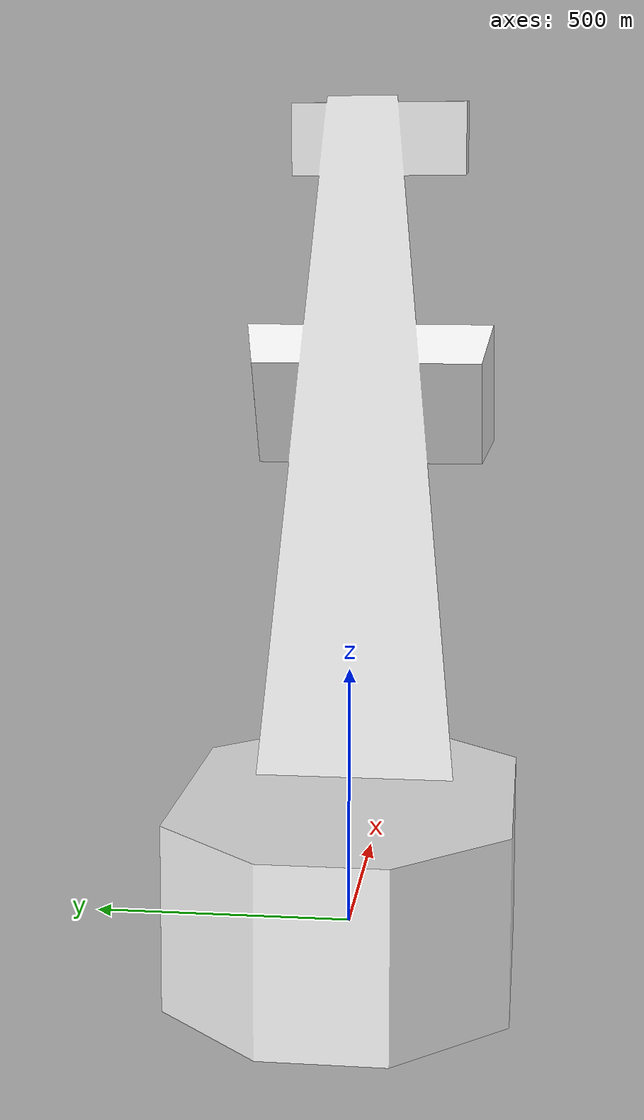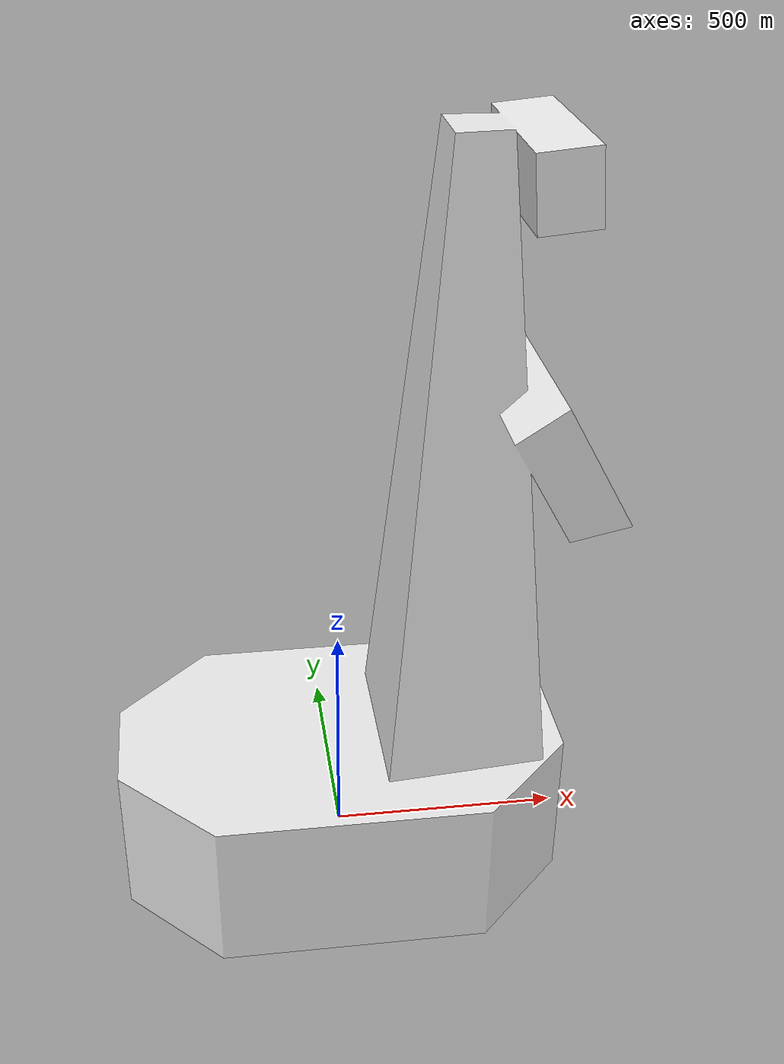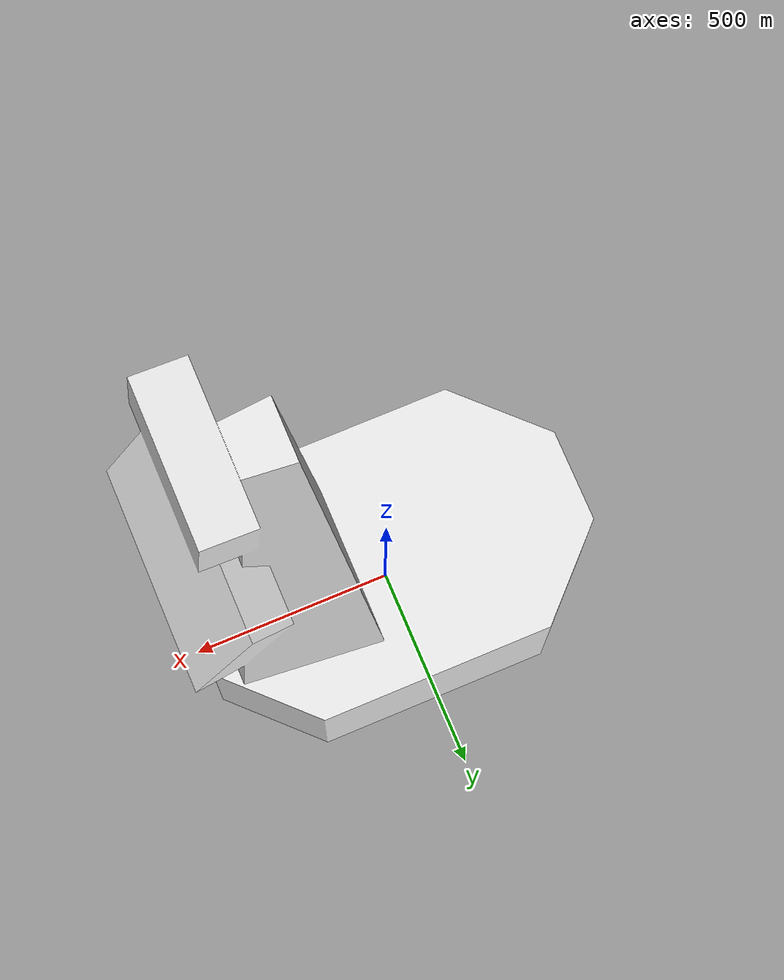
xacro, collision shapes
<?xml version="1.0" ?>
<robot name="rosa" xmlns:xacro="http://www.ros.org/wiki/xacro">

  <xacro:include filename="materials.xacro" />
  <xacro:include filename="rosa_gazebo.xacro" />
  <xacro:include filename="omni_wheel.xacro" />
  <xacro:include filename="rosa_body.xacro" />

<xacro:property name="wheel_x" value="0.35" />
<xacro:property name="wheel_y" value="0.295" />
<xacro:property name="wheel_z" value="0.075" />

  <!-- Base Macro-->
  <xacro:rosa_base name="base_link">
  </xacro:rosa_base>

  <!-- Wheel Macro -->
  <xacro:mechanum_wheel name="wheel_front_left" parent="base_link">
  	<origin xyz="${wheel_x} ${wheel_y} ${wheel_z}" rpy="0 0 0" />
  </xacro:mechanum_wheel>

  <xacro:mechanum_wheel name="wheel_front_right" parent="base_link" reflect="true">
  	<origin xyz="${wheel_x} -${wheel_y} ${wheel_z}" rpy="0 0 0" />
  </xacro:mechanum_wheel>

  <xacro:mechanum_wheel name="wheel_back_left" parent="base_link" reflect="true">
  	<origin xyz="-${wheel_x} ${wheel_y} ${wheel_z}" rpy="0 0 3.14159" />
  </xacro:mechanum_wheel>

  <xacro:mechanum_wheel name="wheel_back_right" parent="base_link">
  	<origin xyz="-${wheel_x} -${wheel_y} ${wheel_z}" rpy="0 0 3.14159" />
  </xacro:mechanum_wheel>

<!-- Robot Footprint -->
  <link name="base_footprint"/>

  <joint name="base_joint" type="fixed">
    <parent link="base_link"/>
    <child link="base_footprint"/>
    <origin xyz="0.0 0.0 -${wheel_z}" rpy="0 0 0"/>
  </joint>

</robot>

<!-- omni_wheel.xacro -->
<robot xmlns:xacro="http://www.ros.org/wiki/xacro" name="rosa">

  <xacro:macro name="mechanum_wheel" params="name parent reflect:='false' *origin">

   <link name="${name}_link" type="wheel">
    <inertial>
      <mass value="1.0" />
      <origin xyz="0 0 0" rpy="0 0 0" />
        <inertia  ixx="0.04" ixy="0.0007" ixz="0.0"
                  iyy="0.02" iyz="0.004"
                  izz="0.05" />
    </inertial>

    <visual>
     <geometry>
     <xacro:if value="${reflect}">
        <mesh filename="file://$(find rosa_description)/models/rosa/meshes/MECANUM_WHEEL_mhg.dae" scale="1 -1 1"/>
     </xacro:if>
     <xacro:unless value="${reflect}">
        <mesh filename="file://$(find rosa_description)/models/rosa/meshes/MECANUM_WHEEL_mhg.dae" scale="1 1 1"/>
     </xacro:unless>
     </geometry>
    </visual>
    <collision>
     <origin xyz="0 0 0" rpy="1.5707 0 0"/>
     <geometry>
	<cylinder length="0.06" radius="0.075"/>
     </geometry>
    </collision>
   </link>

   <joint name="${name}_joint" type="fixed">
    <xacro:insert_block name="origin" />
    <axis xyz="0 1 0" />
    <joint_properties damping="1" friction="1" />
    <parent link="${parent}" />
    <child link="${name}_link" />
   </joint>

  <gazebo reference="${name}_link">
    <mu1 value="1"/>
    <mu2 value="1"/>
  </gazebo>

  </xacro:macro>

</robot>

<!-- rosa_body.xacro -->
<robot xmlns:xacro="http://www.ros.org/wiki/xacro" name="rosa">

<xacro:macro name="rosa_base" params="name">
  <link name="${name}">
    <inertial>
      <mass value="80"/>
      <origin xyz="0 0 0.3" />
       <inertia ixx="5.652232699207" ixy="0.009719934438" ixz="1.293988226423"
               iyy="5.669473158652" iyz="0.007379583694"
               izz="5.683196351726" />
    </inertial>
    <visual>
      <origin xyz="0. 0. 0.15" rpy="0 3.14159 3.14159" />
      <geometry>
          <mesh filename="file://$(find rosa_description)/models/rosa/meshes/ROSA_BODY.dae"/>
      </geometry>
      <material name="white"/>
    </visual>
    <collision>
      <origin xyz="0. 0. 0.15" rpy="0 3.14159 3.14159" />
      <geometry>
         <mesh filename="file://$(find rosa_description)/models/rosa/meshes/ROSA_BODY_SIMPLE.stl"/>
      </geometry>
    </collision>
  </link>

</xacro:macro>

</robot>
